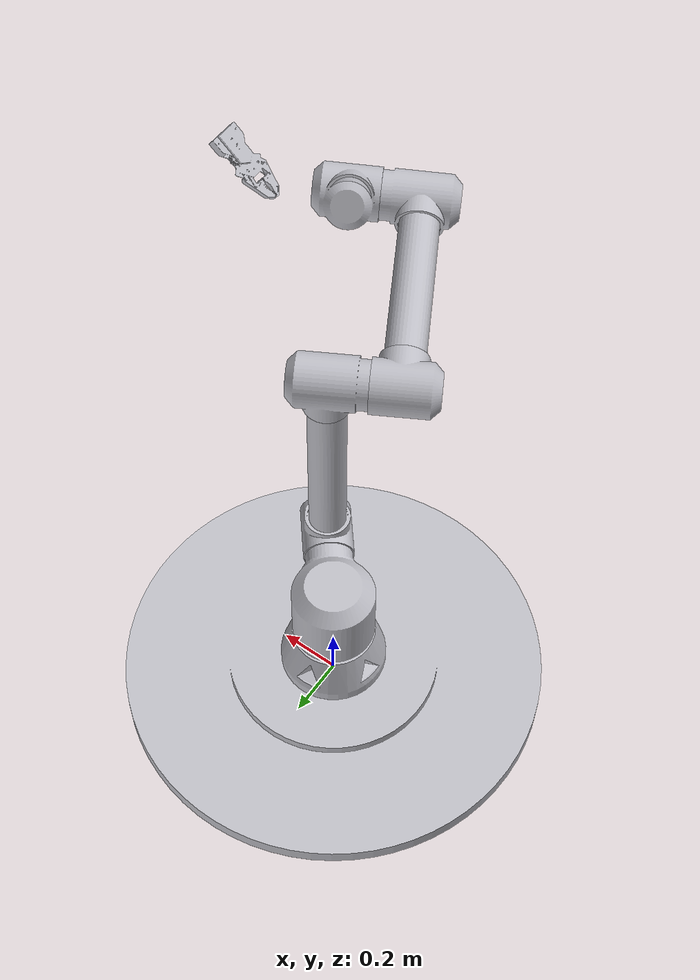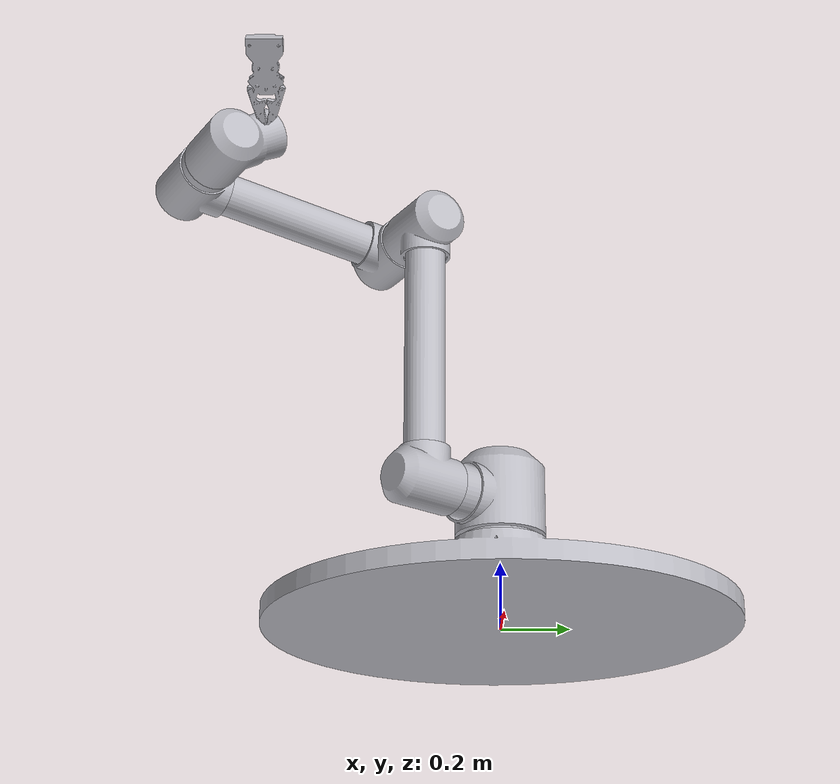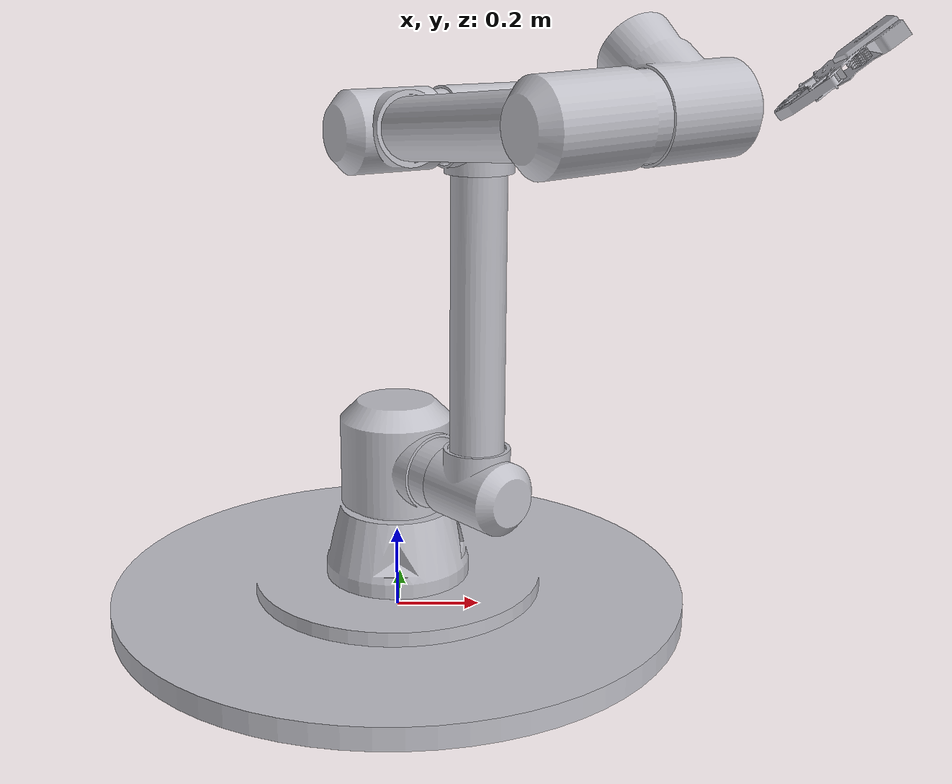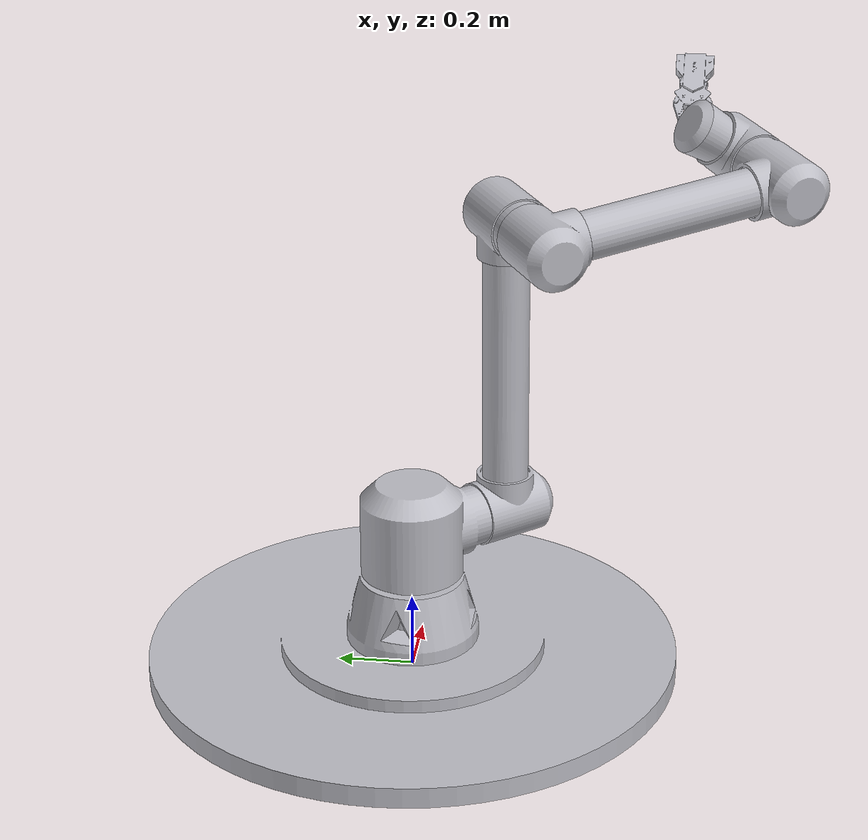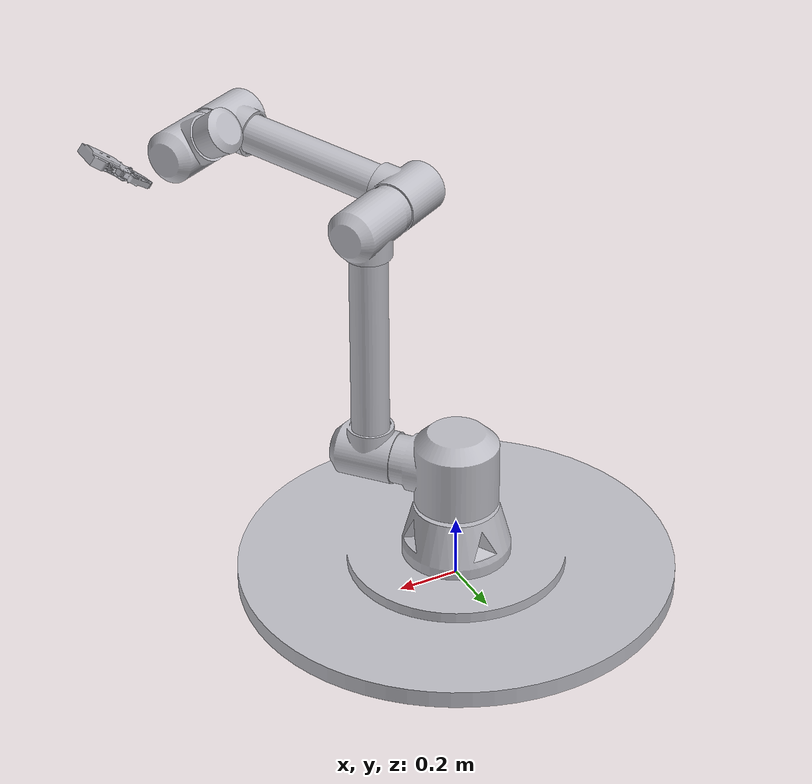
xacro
<?xml version="1.0" ?>
<robot name="elegriparm" xmlns:xacro="http://www.ros.org/wiki/xacro">

<xacro:include filename="$(find elegriparm_description)/urdf/materials.xacro" />
<xacro:include filename="$(find elegriparm_description)/urdf/elegriparm.trans" />
<xacro:include filename="$(find elegriparm_description)/urdf/elegriparm.gazebo" />
<link name="elegrip">
  <inertial>
    <origin xyz="-2.6378267996385318e-05 -2.982904930888828e-05 0.0452416392508935" rpy="0 0 0"/>
    <mass value="855.6902182513435"/>
    <inertia ixx="88.194887" iyy="88.185464" izz="173.450328" ixy="-0.004914" iyz="0.003488" ixz="0.003004"/>
  </inertial>
  <visual>
    <origin xyz="0 0 0" rpy="0 0 0"/>
    <geometry>
      <mesh filename="package://elegriparm_description/meshes/elegrip.stl" scale="0.001 0.001 0.001"/>
    </geometry>
    <material name="silver"/>
  </visual>
  <collision>
    <origin xyz="0 0 0" rpy="0 0 0"/>
    <geometry>
      <mesh filename="package://elegriparm_description/meshes/elegrip.stl" scale="0.001 0.001 0.001"/>
    </geometry>
  </collision>
</link>

<link name="base_link">
  <inertial>
    <origin xyz="-2.6378267996385318e-05 -2.982904930888828e-05 0.0452416392508935" rpy="0 0 0"/>
    <mass value="855.6902182513435"/>
    <inertia ixx="88.194887" iyy="88.185464" izz="173.450328" ixy="-0.004914" iyz="0.003488" ixz="0.003004"/>
  </inertial>
  <visual>
    <origin xyz="0 0 0" rpy="0 0 0"/>
    <geometry>
      <mesh filename="package://elegriparm_description/meshes/base_link.stl" scale="0.001 0.001 0.001"/>
    </geometry>
    <material name="silver"/>
  </visual>
  <collision>
    <origin xyz="0 0 0" rpy="0 0 0"/>
    <geometry>
      <mesh filename="package://elegriparm_description/meshes/base_link.stl" scale="0.001 0.001 0.001"/>
    </geometry>
  </collision>
</link>

<link name="link1_1">
  <inertial>
    <origin xyz="0.012552259756380054 -0.014820493391146296 0.20074728180211923" rpy="0 0 0"/>
    <mass value="162.8353483389851"/>
    <inertia ixx="2.522973" iyy="2.435738" izz="1.773971" ixy="0.26063" iyz="0.07993" ixz="-0.067697"/>
  </inertial>
  <visual>
    <origin xyz="-0.0 0.0 -0.155" rpy="0 0 0"/>
    <geometry>
      <mesh filename="package://elegriparm_description/meshes/link1_1.stl" scale="0.001 0.001 0.001"/>
    </geometry>
    <material name="silver"/>
  </visual>
  <collision>
    <origin xyz="-0.0 0.0 -0.155" rpy="0 0 0"/>
    <geometry>
      <mesh filename="package://elegriparm_description/meshes/link1_1.stl" scale="0.001 0.001 0.001"/>
    </geometry>
  </collision>
</link>

<link name="link2_1">
  <inertial>
    <origin xyz="0.37718159984781086 -0.16304278711013198 -0.027869527473308564" rpy="0 0 0"/>
    <mass value="16.3345971734594"/>
    <inertia ixx="0.080874" iyy="0.080039" izz="0.075837" ixy="0.004955" iyz="-0.008312" ixz="0.007658"/>
  </inertial>
  <visual>
    <origin xyz="0.157727 0.099531 -0.430868" rpy="0 0 0"/>
    <geometry>
      <mesh filename="package://elegriparm_description/meshes/link2_1.stl" scale="0.001 0.001 0.001"/>
    </geometry>
    <material name="silver"/>
  </visual>
  <collision>
    <origin xyz="0.157727 0.099531 -0.430868" rpy="0 0 0"/>
    <geometry>
      <mesh filename="package://elegriparm_description/meshes/link2_1.stl" scale="0.001 0.001 0.001"/>
    </geometry>
  </collision>
</link>

<link name="link3_1">
  <inertial>
    <origin xyz="4.174088950870125e-07 -3.563244375670571e-07 0.3150003051274889" rpy="0 0 0"/>
    <mass value="58.287075422588"/>
    <inertia ixx="1.982512" iyy="1.982512" izz="0.109334" ixy="0.0" iyz="-0.0" ixz="-0.0"/>
  </inertial>
  <visual>
    <origin xyz="-0.18738 0.225644 -0.4817" rpy="0 0 0"/>
    <geometry>
      <mesh filename="package://elegriparm_description/meshes/link3_1.stl" scale="0.001 0.001 0.001"/>
    </geometry>
    <material name="silver"/>
  </visual>
  <collision>
    <origin xyz="-0.18738 0.225644 -0.4817" rpy="0 0 0"/>
    <geometry>
      <mesh filename="package://elegriparm_description/meshes/link3_1.stl" scale="0.001 0.001 0.001"/>
    </geometry>
  </collision>
</link>

<link name="link5_1">
  <inertial>
    <origin xyz="0.006460681422399042 -0.01241626832551379 0.002097716132566596" rpy="0 0 0"/>
    <mass value="16.33458651273331"/>
    <inertia ixx="0.06605" iyy="0.08552" izz="0.08518" ixy="0.005491" iyz="0.000529" ixz="-0.002227"/>
  </inertial>
  <visual>
    <origin xyz="0.043671 0.358677 -1.204533" rpy="0 0 0"/>
    <geometry>
      <mesh filename="package://elegriparm_description/meshes/link5_1.stl" scale="0.001 0.001 0.001"/>
    </geometry>
    <material name="silver"/>
  </visual>
  <collision>
    <origin xyz="0.043671 0.358677 -1.204533" rpy="0 0 0"/>
    <geometry>
      <mesh filename="package://elegriparm_description/meshes/link5_1.stl" scale="0.001 0.001 0.001"/>
    </geometry>
  </collision>
</link>

<link name="link6_1">
  <inertial>
    <origin xyz="0.12025593535505269 -0.21189518084320091 0.025763419455570924" rpy="0 0 0"/>
    <mass value="47.776682043389435"/>
    <inertia ixx="0.784226" iyy="0.323425" izz="0.993106" ixy="0.385763" iyz="0.082647" ixz="-0.046904"/>
  </inertial>
  <visual>
    <origin xyz="-0.043896 0.414929 -1.215943" rpy="0 0 0"/>
    <geometry>
      <mesh filename="package://elegriparm_description/meshes/link6_1.stl" scale="0.001 0.001 0.001"/>
    </geometry>
    <material name="silver"/>
  </visual>
  <collision>
    <origin xyz="-0.043896 0.414929 -1.215943" rpy="0 0 0"/>
    <geometry>
      <mesh filename="package://elegriparm_description/meshes/link6_1.stl" scale="0.001 0.001 0.001"/>
    </geometry>
  </collision>
</link>

<link name="link7_1">
  <inertial>
    <origin xyz="0.10237209013635501 -0.043341227116188596 0.01330882364025121" rpy="0 0 0"/>
    <mass value="62.39336668118014"/>
    <inertia ixx="0.352989" iyy="0.688749" izz="0.836734" ixy="-0.255612" iyz="-0.010194" ixz="-0.022779"/>
  </inertial>
  <visual>
    <origin xyz="-0.284408 0.83872 -1.26747" rpy="0 0 0"/>
    <geometry>
      <mesh filename="package://elegriparm_description/meshes/link7_1.stl" scale="0.001 0.001 0.001"/>
    </geometry>
    <material name="silver"/>
  </visual>
  <collision>
    <origin xyz="-0.284408 0.83872 -1.26747" rpy="0 0 0"/>
    <geometry>
      <mesh filename="package://elegriparm_description/meshes/link7_1.stl" scale="0.001 0.001 0.001"/>
    </geometry>
  </collision>
</link>

<link name="link8_1">
  <inertial>
    <origin xyz="-0.020310230742140334 -0.009607967604363443 0.06712602452313687" rpy="0 0 0"/>
    <mass value="28.09297060145581"/>
    <inertia ixx="0.213748" iyy="0.231658" izz="0.124731" ixy="-0.012252" iyz="0.025643" ixz="0.051433"/>
  </inertial>
  <visual>
    <origin xyz="-0.561048 0.786497 -1.288517" rpy="0 0 0"/>
    <geometry>
      <mesh filename="package://elegriparm_description/meshes/link8_1.stl" scale="0.001 0.001 0.001"/>
    </geometry>
    <material name="silver"/>
  </visual>
  <collision>
    <origin xyz="-0.561048 0.786497 -1.288517" rpy="0 0 0"/>
    <geometry>
      <mesh filename="package://elegriparm_description/meshes/link8_1.stl" scale="0.001 0.001 0.001"/>
    </geometry>
  </collision>
</link>

<link name="link4_1">
  <inertial>
    <origin xyz="-0.05744272173050652 -0.03431687311802767 0.08905783463041961" rpy="0 0 0"/>
    <mass value="61.145733834937005"/>
    <inertia ixx="0.357472" iyy="0.671505" izz="0.809876" ixy="-0.264206" iyz="0.008209" ixz="0.013096"/>
  </inertial>
  <visual>
    <origin xyz="-0.18738 0.225644 -1.1117" rpy="0 0 0"/>
    <geometry>
      <mesh filename="package://elegriparm_description/meshes/link4_1.stl" scale="0.001 0.001 0.001"/>
    </geometry>
    <material name="silver"/>
  </visual>
  <collision>
    <origin xyz="-0.18738 0.225644 -1.1117" rpy="0 0 0"/>
    <geometry>
      <mesh filename="package://elegriparm_description/meshes/link4_1.stl" scale="0.001 0.001 0.001"/>
    </geometry>
  </collision>
</link>

<joint name="Rev46" type="continuous">
  <origin xyz="0.0 0.0 0.155" rpy="0 0 0"/>
  <parent link="base_link"/>
  <child link="link1_1"/>
  <axis xyz="0.0 0.0 1.0"/>
</joint>

<joint name="Rev47" type="revolute">
  <origin xyz="-0.157727 -0.099531 0.275868" rpy="0 0 0"/>
  <parent link="link1_1"/>
  <child link="link2_1"/>
  <axis xyz="0.639504 -0.768788 -0.0"/>
  <limit upper="0.698132" lower="-0.872665" effort="100" velocity="100"/>
</joint>

<joint name="Rev48" type="revolute">
  <origin xyz="0.345107 -0.126113 0.050832" rpy="0 0 0"/>
  <parent link="link2_1"/>
  <child link="link3_1"/>
  <axis xyz="0.0 0.0 1.0"/>
  <limit upper="1.570796" lower="-1.570796" effort="100" velocity="100"/>
</joint>

<joint name="Rev50" type="revolute">
  <origin xyz="-0.231051 -0.133033 0.092833" rpy="0 0 0"/>
  <parent link="link4_1"/>
  <child link="link5_1"/>
  <axis xyz="-0.869702 -0.493576 -0.0"/>
  <limit upper="1.570796" lower="-1.570796" effort="100" velocity="100"/>
</joint>

<joint name="Rev51" type="revolute">
  <origin xyz="0.087567 -0.056252 0.01141" rpy="0 0 0"/>
  <parent link="link5_1"/>
  <child link="link6_1"/>
  <axis xyz="0.49084 -0.86488 0.105158"/>
  <limit upper="3.141593" lower="-0.872665" effort="100" velocity="100"/>
</joint>

<joint name="Rev52" type="revolute">
  <origin xyz="0.240512 -0.423791 0.051527" rpy="0 0 0"/>
  <parent link="link6_1"/>
  <child link="link7_1"/>
  <axis xyz="0.49084 -0.86488 0.105158"/>
  <limit upper="2.268928" lower="-1.570796" effort="100" velocity="100"/>
</joint>

<joint name="Rev53" type="revolute">
  <origin xyz="0.27664 0.052223 0.021047" rpy="0 0 0"/>
  <parent link="link7_1"/>
  <child link="link8_1"/>
  <axis xyz="0.867241 0.496575 0.036152"/>
  <limit upper="-0.174533" lower="-1.745329" effort="100" velocity="100"/>
</joint>

<joint name="Rev61" type="revolute">
  <origin xyz="0.27664 0.052223 0.021047" rpy="0 0 0"/>
  <parent link="link8_1"/>
  <child link="elegrip"/>
  <axis xyz="0.867241 0.496575 0.036152"/>
  <limit upper="-0.174533" lower="-1.745329" effort="100" velocity="100"/>
</joint>

<joint name="Rev60" type="revolute">
  <origin xyz="0.0 0.0 0.63" rpy="0 0 0"/>
  <parent link="link3_1"/>
  <child link="link4_1"/>
  <axis xyz="0.0 0.0 1.0"/>
  <limit upper="1.570796" lower="-1.570796" effort="100" velocity="100"/>
</joint>

</robot>

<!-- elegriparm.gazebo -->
<robot name="elegriparm" xmlns:xacro="http://www.ros.org/wiki/xacro" >

<xacro:property name="body_color" value="Gazebo/Silver" />

<gazebo>
  <plugin name="control" filename="libgazebo_ros_control.so"/>
</gazebo>
<gazebo reference="base_link">
  <material>${body_color}</material>
  <mu1>0.2</mu1>
  <mu2>0.2</mu2>
  <selfCollide>true</selfCollide>
  <gravity>true</gravity>
</gazebo>

<gazebo reference="link1_1">
  <material>${body_color}</material>
  <mu1>0.2</mu1>
  <mu2>0.2</mu2>
  <selfCollide>true</selfCollide>
</gazebo>

<gazebo reference="link2_1">
  <material>${body_color}</material>
  <mu1>0.2</mu1>
  <mu2>0.2</mu2>
  <selfCollide>true</selfCollide>
</gazebo>

<gazebo reference="link3_1">
  <material>${body_color}</material>
  <mu1>0.2</mu1>
  <mu2>0.2</mu2>
  <selfCollide>true</selfCollide>
</gazebo>

<gazebo reference="link5_1">
  <material>${body_color}</material>
  <mu1>0.2</mu1>
  <mu2>0.2</mu2>
  <selfCollide>true</selfCollide>
</gazebo>

<gazebo reference="link6_1">
  <material>${body_color}</material>
  <mu1>0.2</mu1>
  <mu2>0.2</mu2>
  <selfCollide>true</selfCollide>
</gazebo>

<gazebo reference="link7_1">
  <material>${body_color}</material>
  <mu1>0.2</mu1>
  <mu2>0.2</mu2>
  <selfCollide>true</selfCollide>
</gazebo>

<gazebo reference="link8_1">
  <material>${body_color}</material>
  <mu1>0.2</mu1>
  <mu2>0.2</mu2>
  <selfCollide>true</selfCollide>
</gazebo>

<gazebo reference="link4_1">
  <material>${body_color}</material>
  <mu1>0.2</mu1>
  <mu2>0.2</mu2>
  <selfCollide>true</selfCollide>
</gazebo>

</robot>
